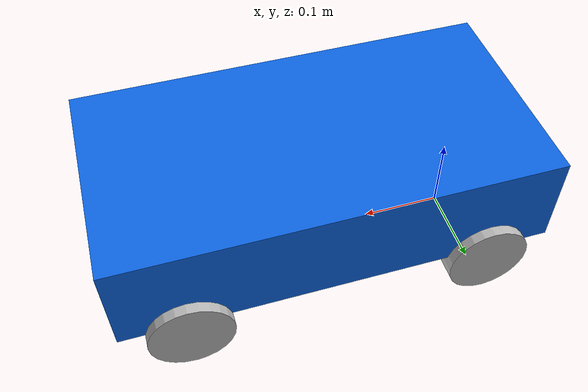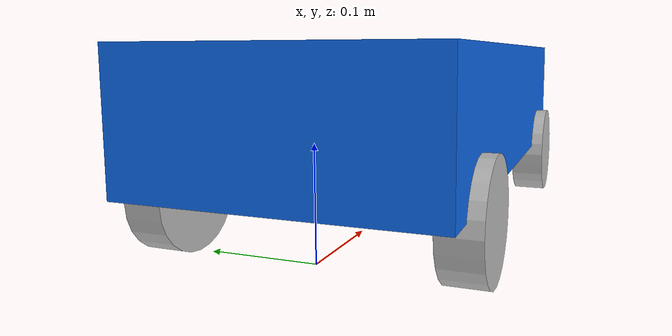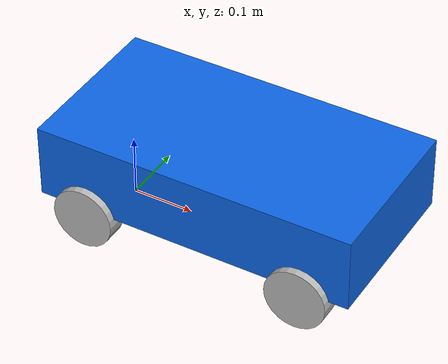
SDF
<?xml version="1.0" ?>
<sdf version="1.8">
  <!-- The model origin/base_link is the rear axle, matching MPCC's state. -->
  <model name="aims_racer">
    <self_collide>false</self_collide>
    <link name="base_link">
      <inertial><mass>3.0</mass><inertia><ixx>0.035</ixx><iyy>0.080</iyy><izz>0.105</izz></inertia></inertial>
      <collision name="chassis_collision"><pose>0.18 0 0.12 0 0 0</pose><geometry><box><size>0.52 0.27 0.12</size></box></geometry></collision>
      <visual name="chassis_visual"><pose>0.18 0 0.12 0 0 0</pose><geometry><box><size>0.52 0.27 0.12</size></box></geometry><material><diffuse>0.05 0.40 0.90 1</diffuse></material></visual>
    </link>
    <link name="front_left_steering_link"><pose>0.36 0.13 0.05 0 0 0</pose><inertial><mass>0.05</mass><inertia><ixx>0.0001</ixx><iyy>0.0001</iyy><izz>0.0001</izz></inertia></inertial></link>
    <link name="front_right_steering_link"><pose>0.36 -0.13 0.05 0 0 0</pose><inertial><mass>0.05</mass><inertia><ixx>0.0001</ixx><iyy>0.0001</iyy><izz>0.0001</izz></inertia></inertial></link>
    <joint name="front_left_steering_joint" type="revolute"><parent>base_link</parent><child>front_left_steering_link</child><axis><xyz>0 0 1</xyz><limit><lower>-0.45</lower><upper>0.45</upper><effort>20</effort><velocity>4</velocity></limit></axis></joint>
    <joint name="front_right_steering_joint" type="revolute"><parent>base_link</parent><child>front_right_steering_link</child><axis><xyz>0 0 1</xyz><limit><lower>-0.45</lower><upper>0.45</upper><effort>20</effort><velocity>4</velocity></limit></axis></joint>

    <link name="front_left_wheel"><pose>0.36 0.13 0.05 0 0 0</pose><inertial><mass>0.08</mass><inertia><ixx>0.00012</ixx><iyy>0.00006</iyy><izz>0.00012</izz></inertia></inertial><collision name="collision"><pose>0 0 0 1.5708 0 0</pose><geometry><cylinder><radius>0.05</radius><length>0.035</length></cylinder></geometry><surface><friction><ode><mu>1.0</mu><mu2>1.0</mu2></ode></friction></surface></collision><visual name="visual"><pose>0 0 0 1.5708 0 0</pose><geometry><cylinder><radius>0.05</radius><length>0.035</length></cylinder></geometry></visual></link>
    <link name="front_right_wheel"><pose>0.36 -0.13 0.05 0 0 0</pose><inertial><mass>0.08</mass><inertia><ixx>0.00012</ixx><iyy>0.00006</iyy><izz>0.00012</izz></inertia></inertial><collision name="collision"><pose>0 0 0 1.5708 0 0</pose><geometry><cylinder><radius>0.05</radius><length>0.035</length></cylinder></geometry><surface><friction><ode><mu>1.0</mu><mu2>1.0</mu2></ode></friction></surface></collision><visual name="visual"><pose>0 0 0 1.5708 0 0</pose><geometry><cylinder><radius>0.05</radius><length>0.035</length></cylinder></geometry></visual></link>
    <link name="rear_left_wheel"><pose>0 0.13 0.05 0 0 0</pose><inertial><mass>0.08</mass><inertia><ixx>0.00012</ixx><iyy>0.00006</iyy><izz>0.00012</izz></inertia></inertial><collision name="collision"><pose>0 0 0 1.5708 0 0</pose><geometry><cylinder><radius>0.05</radius><length>0.035</length></cylinder></geometry><surface><friction><ode><mu>1.0</mu><mu2>1.0</mu2></ode></friction></surface></collision><visual name="visual"><pose>0 0 0 1.5708 0 0</pose><geometry><cylinder><radius>0.05</radius><length>0.035</length></cylinder></geometry></visual></link>
    <link name="rear_right_wheel"><pose>0 -0.13 0.05 0 0 0</pose><inertial><mass>0.08</mass><inertia><ixx>0.00012</ixx><iyy>0.00006</iyy><izz>0.00012</izz></inertia></inertial><collision name="collision"><pose>0 0 0 1.5708 0 0</pose><geometry><cylinder><radius>0.05</radius><length>0.035</length></cylinder></geometry><surface><friction><ode><mu>1.0</mu><mu2>1.0</mu2></ode></friction></surface></collision><visual name="visual"><pose>0 0 0 1.5708 0 0</pose><geometry><cylinder><radius>0.05</radius><length>0.035</length></cylinder></geometry></visual></link>
    <joint name="front_left_wheel_joint" type="revolute"><parent>front_left_steering_link</parent><child>front_left_wheel</child><axis><xyz>0 1 0</xyz><limit><effort>20</effort><velocity>100</velocity></limit></axis></joint>
    <joint name="front_right_wheel_joint" type="revolute"><parent>front_right_steering_link</parent><child>front_right_wheel</child><axis><xyz>0 1 0</xyz><limit><effort>20</effort><velocity>100</velocity></limit></axis></joint>
    <joint name="rear_left_wheel_joint" type="revolute"><parent>base_link</parent><child>rear_left_wheel</child><axis><xyz>0 1 0</xyz><limit><effort>20</effort><velocity>100</velocity></limit></axis></joint>
    <joint name="rear_right_wheel_joint" type="revolute"><parent>base_link</parent><child>rear_right_wheel</child><axis><xyz>0 1 0</xyz><limit><effort>20</effort><velocity>100</velocity></limit></axis></joint>
    <plugin filename="ignition-gazebo-ackermann-steering-system" name="gz::sim::systems::AckermannSteering">
      <left_joint>front_left_wheel_joint</left_joint><right_joint>front_right_wheel_joint</right_joint><left_joint>rear_left_wheel_joint</left_joint><right_joint>rear_right_wheel_joint</right_joint>
      <left_steering_joint>front_left_steering_joint</left_steering_joint><right_steering_joint>front_right_steering_joint</right_steering_joint>
      <kingpin_width>0.26</kingpin_width><wheel_base>0.36</wheel_base><wheel_separation>0.26</wheel_separation><wheel_radius>0.05</wheel_radius>
      <steering_limit>0.4</steering_limit><min_velocity>-1.5</min_velocity><max_velocity>1.5</max_velocity><min_acceleration>-0.5</min_acceleration><max_acceleration>0.5</max_acceleration><odom_topic>/model/aims_racer/wheel_odometry</odom_topic><odom_publish_frequency>50</odom_publish_frequency>
    </plugin>
    <plugin filename="ignition-gazebo-odometry-publisher-system" name="gz::sim::systems::OdometryPublisher"><odom_publish_frequency>50</odom_publish_frequency><odom_frame>odom</odom_frame><robot_base_frame>base_link</robot_base_frame><dimensions>2</dimensions></plugin>
  </model>
</sdf>
